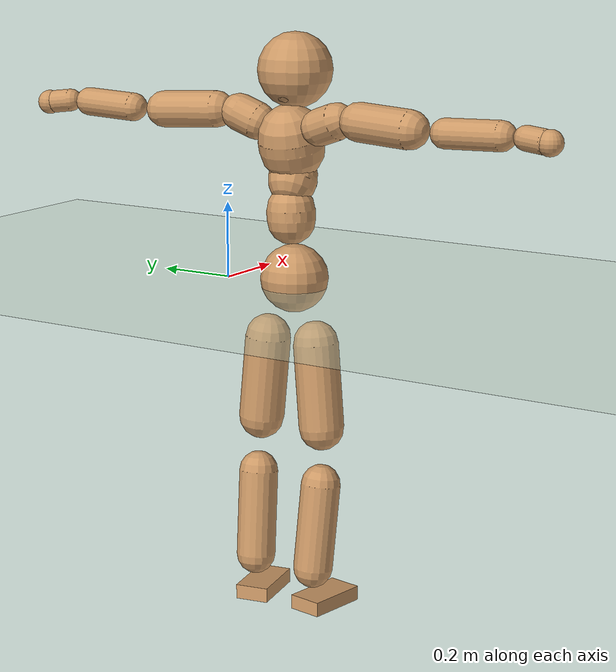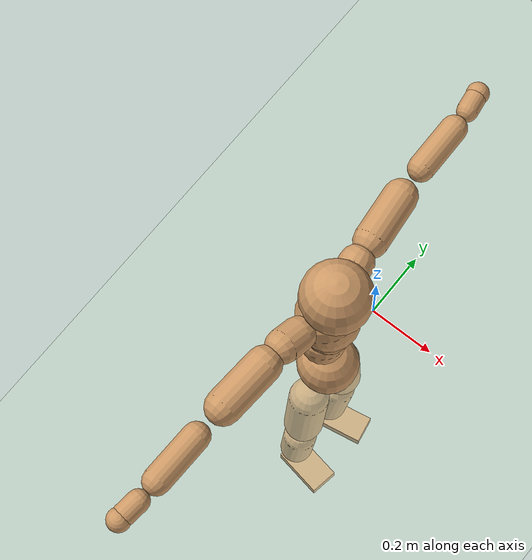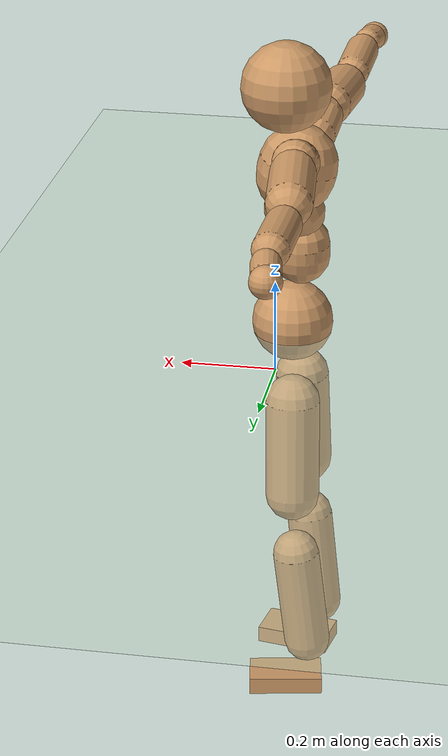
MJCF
<mujoco model="humanoid">
  <compiler coordinate="local"/>
  <default>
    <joint damping="0.0" armature="0.01" stiffness="0.0" limited="true"/>
    <geom conaffinity="1" condim="3" contype="7" margin="0.001" rgba="0.8 0.6 .4 1"/>
  </default>
  <asset>
    <texture type="skybox" builtin="gradient" rgb1=".4 .5 .6" rgb2="0 0 0" width="100" height="100"/>
    <texture builtin="flat" height="1278" mark="cross" markrgb="1 1 1" name="texgeom" random="0.01" rgb1="0.8 0.6 0.4" rgb2="0.8 0.6 0.4" type="cube" width="127"/>
    <texture builtin="checker" height="100" name="texplane" rgb1="0 0 0" rgb2="0.8 0.8 0.8" type="2d" width="100"/>
    <material name="MatPlane" reflectance="0.5" shininess="1" specular="1" texrepeat="60 60" texture="texplane"/>
    <material name="geom" texture="texgeom" texuniform="true"/>
  </asset>
  <worldbody>
    <light cutoff="100" diffuse="1 1 1" dir="-0 0 -1.3" directional="true" exponent="1" pos="0 0 1.3" specular=".1 .1 .1"/>
    <geom conaffinity="1" condim="3" name="floor" pos="0 0 0" rgba="0.8 0.9 0.8 1" size="100 100 .2" type="plane" material="MatPlane"/>
    <body name="Pelvis" pos="-0.0016 -0.2063 0.0217">
      <freejoint name="Pelvis"/>
      <geom type="sphere" contype="1" conaffinity="1" density="500" size="0.0881" pos="0.0000 0.0000 0.0000" name="Pelvis"/>
      <body name="L_Hip" pos="-0.0116 0.0664 -0.0887">
        <joint name="L_Hip_x" type="hinge" pos="0 0 0" axis="1 0 0" stiffness="800" damping="80" armature="0.02" range="-180.0000 180.0000"/>
        <joint name="L_Hip_y" type="hinge" pos="0 0 0" axis="0 1 0" stiffness="800" damping="80" armature="0.02" range="-180.0000 180.0000"/>
        <joint name="L_Hip_z" type="hinge" pos="0 0 0" axis="0 0 1" stiffness="800" damping="80" armature="0.02" range="-180.0000 180.0000"/>
        <geom type="capsule" contype="1" conaffinity="1" density="500" fromto="-0.0009 0.0062 -0.0725 -0.0036 0.0249 -0.2901" size="0.0591" name="L_Hip"/>
        <body name="L_Knee" pos="-0.0045 0.0312 -0.3627">
          <joint name="L_Knee_x" type="hinge" pos="0 0 0" axis="1 0 0" stiffness="800" damping="80" armature="0.02" range="-180.0000 180.0000"/>
          <joint name="L_Knee_y" type="hinge" pos="0 0 0" axis="0 1 0" stiffness="800" damping="80" armature="0.02" range="-180.0000 180.0000"/>
          <joint name="L_Knee_z" type="hinge" pos="0 0 0" axis="0 0 1" stiffness="800" damping="80" armature="0.02" range="-180.0000 180.0000"/>
          <geom type="capsule" contype="1" conaffinity="1" density="500" fromto="-0.0082 -0.0023 -0.0756 -0.0329 -0.0091 -0.3023" size="0.0509" name="L_Knee"/>
          <body name="L_Ankle" pos="-0.0412 -0.0113 -0.3779">
            <joint name="L_Ankle_x" type="hinge" pos="0 0 0" axis="1 0 0" stiffness="800" damping="80" armature="0.02" range="-180.0000 180.0000"/>
            <joint name="L_Ankle_y" type="hinge" pos="0 0 0" axis="0 1 0" stiffness="800" damping="80" armature="0.02" range="-180.0000 180.0000"/>
            <joint name="L_Ankle_z" type="hinge" pos="0 0 0" axis="0 0 1" stiffness="800" damping="80" armature="0.02" range="-180.0000 180.0000"/>
            <geom type="box" contype="1" conaffinity="1" density="500" pos="0.0564 0.0101 -0.0264" size="0.0815 0.0438 0.0192" quat="0.9961 0.0000 0.0000 0.0887" name="L_Ankle"/>
            <body name="L_Toe" pos="0.1128 0.0203 -0.0529">
              <joint name="L_Toe_x" type="hinge" pos="0 0 0" axis="1 0 0" stiffness="500" damping="50" armature="0.02" range="-180.0000 180.0000"/>
              <joint name="L_Toe_y" type="hinge" pos="0 0 0" axis="0 1 0" stiffness="500" damping="50" armature="0.02" range="-180.0000 180.0000"/>
              <joint name="L_Toe_z" type="hinge" pos="0 0 0" axis="0 0 1" stiffness="500" damping="50" armature="0.02" range="-180.0000 180.0000"/>
              <geom type="box" contype="1" conaffinity="1" density="500" pos="0.0000 0.0000 0.0258" size="0.0009 0.0022 0.0009" quat="0.9954 0.0000 0.0000 0.0956" name="L_Toe"/>
            </body>
          </body>
        </body>
      </body>
      <body name="R_Hip" pos="-0.0085 -0.0642 -0.0879">
        <joint name="R_Hip_x" type="hinge" pos="0 0 0" axis="1 0 0" stiffness="800" damping="80" armature="0.02" range="-180.0000 180.0000"/>
        <joint name="R_Hip_y" type="hinge" pos="0 0 0" axis="0 1 0" stiffness="800" damping="80" armature="0.02" range="-180.0000 180.0000"/>
        <joint name="R_Hip_z" type="hinge" pos="0 0 0" axis="0 0 1" stiffness="800" damping="80" armature="0.02" range="-180.0000 180.0000"/>
        <geom type="capsule" contype="1" conaffinity="1" density="500" fromto="-0.0015 -0.0071 -0.0738 -0.0062 -0.0284 -0.2951" size="0.0584" name="R_Hip"/>
        <body name="R_Knee" pos="-0.0077 -0.0356 -0.3689">
          <joint name="R_Knee_x" type="hinge" pos="0 0 0" axis="1 0 0" stiffness="800" damping="80" armature="0.02" range="-180.0000 180.0000"/>
          <joint name="R_Knee_y" type="hinge" pos="0 0 0" axis="0 1 0" stiffness="800" damping="80" armature="0.02" range="-180.0000 180.0000"/>
          <joint name="R_Knee_z" type="hinge" pos="0 0 0" axis="0 0 1" stiffness="800" damping="80" armature="0.02" range="-180.0000 180.0000"/>
          <geom type="capsule" contype="1" conaffinity="1" density="500" fromto="-0.0078 0.0028 -0.0753 -0.0314 0.0113 -0.3012" size="0.0512" name="R_Knee"/>
          <body name="R_Ankle" pos="-0.0392 0.0141 -0.3765">
            <joint name="R_Ankle_x" type="hinge" pos="0 0 0" axis="1 0 0" stiffness="800" damping="80" armature="0.02" range="-180.0000 180.0000"/>
            <joint name="R_Ankle_y" type="hinge" pos="0 0 0" axis="0 1 0" stiffness="800" damping="80" armature="0.02" range="-180.0000 180.0000"/>
            <joint name="R_Ankle_z" type="hinge" pos="0 0 0" axis="0 0 1" stiffness="800" damping="80" armature="0.02" range="-180.0000 180.0000"/>
            <geom type="box" contype="1" conaffinity="1" density="500" pos="0.0578 -0.0099 -0.0222" size="0.082 0.0448 0.0189" quat="0.9964 0.0000 0.0000 -0.0844" name="R_Ankle"/>
            <body name="R_Toe" pos="0.1157 -0.0197 -0.0445">
              <joint name="R_Toe_x" type="hinge" pos="0 0 0" axis="1 0 0" stiffness="500" damping="50" armature="0.02" range="-180.0000 180.0000"/>
              <joint name="R_Toe_y" type="hinge" pos="0 0 0" axis="0 1 0" stiffness="500" damping="50" armature="0.02" range="-180.0000 180.0000"/>
              <joint name="R_Toe_z" type="hinge" pos="0 0 0" axis="0 0 1" stiffness="500" damping="50" armature="0.02" range="-180.0000 180.0000"/>
              <geom type="box" contype="1" conaffinity="1" density="500" pos="0.0000 0.0000 0.0244" size="0.0008 0.0022 0.0011" quat="0.9972 0.0000 0.0000 -0.0747" name="R_Toe"/>
            </body>
          </body>
        </body>
      </body>
      <body name="Torso" pos="-0.0179 -0.0031 0.1017">
        <joint name="Torso_x" type="hinge" pos="0 0 0" axis="1 0 0" stiffness="1000" damping="100" armature="0.02" range="-180.0000 180.0000"/>
        <joint name="Torso_y" type="hinge" pos="0 0 0" axis="0 1 0" stiffness="1000" damping="100" armature="0.02" range="-180.0000 180.0000"/>
        <joint name="Torso_z" type="hinge" pos="0 0 0" axis="0 0 1" stiffness="1000" damping="100" armature="0.02" range="-180.0000 180.0000"/>
        <geom type="capsule" contype="1" conaffinity="1" density="500" fromto="0.0000 0.0024 0.0793 0.0000 0.0016 0.0528" size="0.062589" name="Torso"/>
        <body name="Spine" pos="0.0001 0.004 0.1321">
          <joint name="Spine_x" type="hinge" pos="0 0 0" axis="1 0 0" stiffness="1000" damping="100" armature="0.02" range="-180.0000 180.0000"/>
          <joint name="Spine_y" type="hinge" pos="0 0 0" axis="0 1 0" stiffness="1000" damping="100" armature="0.02" range="-180.0000 180.0000"/>
          <joint name="Spine_z" type="hinge" pos="0 0 0" axis="0 0 1" stiffness="1000" damping="100" armature="0.02" range="-180.0000 180.0000"/>
          <geom type="capsule" contype="1" conaffinity="1" density="500" fromto="0.0167 0.0019 0.0288 0.0111 0.0012 0.0192" size="0.062868" name="Spine"/>
          <body name="Chest" pos="0.0279 0.0031 0.048">
            <joint name="Chest_x" type="hinge" pos="0 0 0" axis="1 0 0" stiffness="1000" damping="100" armature="0.02" range="-180.0000 180.0000"/>
            <joint name="Chest_y" type="hinge" pos="0 0 0" axis="0 1 0" stiffness="1000" damping="100" armature="0.02" range="-180.0000 180.0000"/>
            <joint name="Chest_z" type="hinge" pos="0 0 0" axis="0 0 1" stiffness="1000" damping="100" armature="0.02" range="-180.0000 180.0000"/>
            <geom type="capsule" contype="1" conaffinity="1" density="500" fromto="-0.0232 -0.0003 0.0828 -0.0155 -0.0002 0.0552" size="0.084165" name="Chest"/>
            <body name="Neck" pos="-0.045 -0.0005 0.1928">
              <joint name="Neck_x" type="hinge" pos="0 0 0" axis="1 0 0" stiffness="500" damping="50" armature="0.02" range="-180.0000 180.0000"/>
              <joint name="Neck_y" type="hinge" pos="0 0 0" axis="0 1 0" stiffness="500" damping="50" armature="0.02" range="-180.0000 180.0000"/>
              <joint name="Neck_z" type="hinge" pos="0 0 0" axis="0 0 1" stiffness="500" damping="50" armature="0.02" range="-180.0000 180.0000"/>
              <geom type="capsule" contype="1" conaffinity="1" density="500" fromto="0.0096 0.0007 0.0114 0.0382 0.0026 0.0456" size="0.037014" name="Neck"/>
              <body name="Head" pos="0.0478 0.0033 0.057">
                <joint name="Head_x" type="hinge" pos="0 0 0" axis="1 0 0" stiffness="500" damping="50" armature="0.02" range="-180.0000 180.0000"/>
                <joint name="Head_y" type="hinge" pos="0 0 0" axis="0 1 0" stiffness="500" damping="50" armature="0.02" range="-180.0000 180.0000"/>
                <joint name="Head_z" type="hinge" pos="0 0 0" axis="0 0 1" stiffness="500" damping="50" armature="0.02" range="-180.0000 180.0000"/>
                <geom type="sphere" contype="1" conaffinity="1" density="500" size="0.0961" pos="0.0000 0.0000 0.0000" name="Head"/>
              </body>
            </body>
            <body name="L_Thorax" pos="-0.0329 0.0756 0.1121">
              <joint name="L_Thorax_x" type="hinge" pos="0 0 0" axis="1 0 0" stiffness="500" damping="50" armature="0.02" range="-180.0000 180.0000"/>
              <joint name="L_Thorax_y" type="hinge" pos="0 0 0" axis="0 1 0" stiffness="500" damping="50" armature="0.02" range="-180.0000 180.0000"/>
              <joint name="L_Thorax_z" type="hinge" pos="0 0 0" axis="0 0 1" stiffness="500" damping="50" armature="0.02" range="-180.0000 180.0000"/>
              <geom type="capsule" contype="1" conaffinity="1" density="500" fromto="-0.0015 0.0169 0.0065 -0.0058 0.0677 0.0262" size="0.048" name="L_Thorax"/>
              <body name="L_Shoulder" pos="-0.0073 0.0846 0.0327">
                <joint name="L_Shoulder_x" type="hinge" pos="0 0 0" axis="1 0 0" stiffness="500" damping="50" armature="0.02" range="-720.0000 720.0000"/>
                <joint name="L_Shoulder_y" type="hinge" pos="0 0 0" axis="0 1 0" stiffness="500" damping="50" armature="0.02" range="-720.0000 720.0000"/>
                <joint name="L_Shoulder_z" type="hinge" pos="0 0 0" axis="0 0 1" stiffness="500" damping="50" armature="0.02" range="-720.0000 720.0000"/>
                <geom type="capsule" contype="1" conaffinity="1" density="500" fromto="-0.0058 0.0500 -0.0026 -0.0231 0.2000 -0.0102" size="0.0475" name="L_Shoulder"/>
                <body name="L_Elbow" pos="-0.0289 0.25 -0.0128">
                  <joint name="L_Elbow_x" type="hinge" pos="0 0 0" axis="1 0 0" stiffness="500" damping="50" armature="0.02" range="-720.0000 720.0000"/>
                  <joint name="L_Elbow_y" type="hinge" pos="0 0 0" axis="0 1 0" stiffness="500" damping="50" armature="0.02" range="-720.0000 720.0000"/>
                  <joint name="L_Elbow_z" type="hinge" pos="0 0 0" axis="0 0 1" stiffness="500" damping="50" armature="0.02" range="-720.0000 720.0000"/>
                  <geom type="capsule" contype="1" conaffinity="1" density="500" fromto="-0.0001 0.0475 0.0018 -0.0004 0.1901 0.0074" size="0.0371" name="L_Elbow"/>
                  <body name="L_Wrist" pos="-0.0005 0.2376 0.0092">
                    <joint name="L_Wrist_x" type="hinge" pos="0 0 0" axis="1 0 0" stiffness="300" damping="30" armature="0.02" range="-180.0000 180.0000"/>
                    <joint name="L_Wrist_y" type="hinge" pos="0 0 0" axis="0 1 0" stiffness="300" damping="30" armature="0.02" range="-180.0000 180.0000"/>
                    <joint name="L_Wrist_z" type="hinge" pos="0 0 0" axis="0 0 1" stiffness="300" damping="30" armature="0.02" range="-180.0000 180.0000"/>
                    <geom type="capsule" contype="1" conaffinity="1" density="500" fromto="-0.0026 0.0158 -0.0019 -0.0106 0.0630 -0.0077" size="0.0296" name="L_Wrist"/>
                    <body name="L_Hand" pos="-0.0132 0.0788 -0.0096">
                      <joint name="L_Hand_x" type="hinge" pos="0 0 0" axis="1 0 0" stiffness="300" damping="30" armature="0.02" range="-180.0000 180.0000"/>
                      <joint name="L_Hand_y" type="hinge" pos="0 0 0" axis="0 1 0" stiffness="300" damping="30" armature="0.02" range="-180.0000 180.0000"/>
                      <joint name="L_Hand_z" type="hinge" pos="0 0 0" axis="0 0 1" stiffness="300" damping="30" armature="0.02" range="-180.0000 180.0000"/>
                      <geom type="sphere" contype="1" conaffinity="1" density="500" size="0.0318" pos="0.0000 0.0000 0.0000" name="L_Hand"/>
                    </body>
                  </body>
                </body>
              </body>
            </body>
            <body name="R_Thorax" pos="-0.038 -0.0766 0.109">
              <joint name="R_Thorax_x" type="hinge" pos="0 0 0" axis="1 0 0" stiffness="500" damping="50" armature="0.02" range="-180.0000 180.0000"/>
              <joint name="R_Thorax_y" type="hinge" pos="0 0 0" axis="0 1 0" stiffness="500" damping="50" armature="0.02" range="-180.0000 180.0000"/>
              <joint name="R_Thorax_z" type="hinge" pos="0 0 0" axis="0 0 1" stiffness="500" damping="50" armature="0.02" range="-180.0000 180.0000"/>
              <geom type="capsule" contype="1" conaffinity="1" density="500" fromto="-0.0022 -0.0181 0.0065 -0.0090 -0.0724 0.0260" size="0.0472" name="R_Thorax"/>
              <body name="R_Shoulder" pos="-0.0112 -0.0905 0.0325">
                <joint name="R_Shoulder_x" type="hinge" pos="0 0 0" axis="1 0 0" stiffness="500" damping="50" armature="0.02" range="-720.0000 720.0000"/>
                <joint name="R_Shoulder_y" type="hinge" pos="0 0 0" axis="0 1 0" stiffness="500" damping="50" armature="0.02" range="-720.0000 720.0000"/>
                <joint name="R_Shoulder_z" type="hinge" pos="0 0 0" axis="0 0 1" stiffness="500" damping="50" armature="0.02" range="-720.0000 720.0000"/>
                <geom type="capsule" contype="1" conaffinity="1" density="500" fromto="-0.0038 -0.0490 -0.0025 -0.0151 -0.1959 -0.0099" size="0.049" name="R_Shoulder"/>
                <body name="R_Elbow" pos="-0.0189 -0.2448 -0.0124">
                  <joint name="R_Elbow_x" type="hinge" pos="0 0 0" axis="1 0 0" stiffness="500" damping="50" armature="0.02" range="-720.0000 720.0000"/>
                  <joint name="R_Elbow_y" type="hinge" pos="0 0 0" axis="0 1 0" stiffness="500" damping="50" armature="0.02" range="-720.0000 720.0000"/>
                  <joint name="R_Elbow_z" type="hinge" pos="0 0 0" axis="0 0 1" stiffness="500" damping="50" armature="0.02" range="-720.0000 720.0000"/>
                  <geom type="capsule" contype="1" conaffinity="1" density="500" fromto="-0.0008 -0.0491 0.0016 -0.0033 -0.1963 0.0065" size="0.0374" name="R_Elbow"/>
                  <body name="R_Wrist" pos="-0.0041 -0.2454 0.0082">
                    <joint name="R_Wrist_x" type="hinge" pos="0 0 0" axis="1 0 0" stiffness="300" damping="30" armature="0.02" range="-180.0000 180.0000"/>
                    <joint name="R_Wrist_y" type="hinge" pos="0 0 0" axis="0 1 0" stiffness="300" damping="30" armature="0.02" range="-180.0000 180.0000"/>
                    <joint name="R_Wrist_z" type="hinge" pos="0 0 0" axis="0 0 1" stiffness="300" damping="30" armature="0.02" range="-180.0000 180.0000"/>
                    <geom type="capsule" contype="1" conaffinity="1" density="500" fromto="-0.0021 -0.0159 -0.0014 -0.0083 -0.0638 -0.0057" size="0.0304" name="R_Wrist"/>
                    <body name="R_Hand" pos="-0.0103 -0.0797 -0.0071">
                      <joint name="R_Hand_x" type="hinge" pos="0 0 0" axis="1 0 0" stiffness="300" damping="30" armature="0.02" range="-180.0000 180.0000"/>
                      <joint name="R_Hand_y" type="hinge" pos="0 0 0" axis="0 1 0" stiffness="300" damping="30" armature="0.02" range="-180.0000 180.0000"/>
                      <joint name="R_Hand_z" type="hinge" pos="0 0 0" axis="0 0 1" stiffness="300" damping="30" armature="0.02" range="-180.0000 180.0000"/>
                      <geom type="sphere" contype="1" conaffinity="1" density="500" size="0.0320" pos="0.0000 0.0000 0.0000" name="R_Hand"/>
                    </body>
                  </body>
                </body>
              </body>
            </body>
          </body>
        </body>
      </body>
    </body>
  </worldbody>
  <actuator>
    <motor name="L_Hip_x" joint="L_Hip_x" gear="500"/>
    <motor name="L_Hip_y" joint="L_Hip_y" gear="500"/>
    <motor name="L_Hip_z" joint="L_Hip_z" gear="500"/>
    <motor name="L_Knee_x" joint="L_Knee_x" gear="500"/>
    <motor name="L_Knee_y" joint="L_Knee_y" gear="500"/>
    <motor name="L_Knee_z" joint="L_Knee_z" gear="500"/>
    <motor name="L_Ankle_x" joint="L_Ankle_x" gear="500"/>
    <motor name="L_Ankle_y" joint="L_Ankle_y" gear="500"/>
    <motor name="L_Ankle_z" joint="L_Ankle_z" gear="500"/>
    <motor name="L_Toe_x" joint="L_Toe_x" gear="500"/>
    <motor name="L_Toe_y" joint="L_Toe_y" gear="500"/>
    <motor name="L_Toe_z" joint="L_Toe_z" gear="500"/>
    <motor name="R_Hip_x" joint="R_Hip_x" gear="500"/>
    <motor name="R_Hip_y" joint="R_Hip_y" gear="500"/>
    <motor name="R_Hip_z" joint="R_Hip_z" gear="500"/>
    <motor name="R_Knee_x" joint="R_Knee_x" gear="500"/>
    <motor name="R_Knee_y" joint="R_Knee_y" gear="500"/>
    <motor name="R_Knee_z" joint="R_Knee_z" gear="500"/>
    <motor name="R_Ankle_x" joint="R_Ankle_x" gear="500"/>
    <motor name="R_Ankle_y" joint="R_Ankle_y" gear="500"/>
    <motor name="R_Ankle_z" joint="R_Ankle_z" gear="500"/>
    <motor name="R_Toe_x" joint="R_Toe_x" gear="500"/>
    <motor name="R_Toe_y" joint="R_Toe_y" gear="500"/>
    <motor name="R_Toe_z" joint="R_Toe_z" gear="500"/>
    <motor name="Torso_x" joint="Torso_x" gear="500"/>
    <motor name="Torso_y" joint="Torso_y" gear="500"/>
    <motor name="Torso_z" joint="Torso_z" gear="500"/>
    <motor name="Spine_x" joint="Spine_x" gear="500"/>
    <motor name="Spine_y" joint="Spine_y" gear="500"/>
    <motor name="Spine_z" joint="Spine_z" gear="500"/>
    <motor name="Chest_x" joint="Chest_x" gear="500"/>
    <motor name="Chest_y" joint="Chest_y" gear="500"/>
    <motor name="Chest_z" joint="Chest_z" gear="500"/>
    <motor name="Neck_x" joint="Neck_x" gear="500"/>
    <motor name="Neck_y" joint="Neck_y" gear="500"/>
    <motor name="Neck_z" joint="Neck_z" gear="500"/>
    <motor name="Head_x" joint="Head_x" gear="500"/>
    <motor name="Head_y" joint="Head_y" gear="500"/>
    <motor name="Head_z" joint="Head_z" gear="500"/>
    <motor name="L_Thorax_x" joint="L_Thorax_x" gear="500"/>
    <motor name="L_Thorax_y" joint="L_Thorax_y" gear="500"/>
    <motor name="L_Thorax_z" joint="L_Thorax_z" gear="500"/>
    <motor name="L_Shoulder_x" joint="L_Shoulder_x" gear="500"/>
    <motor name="L_Shoulder_y" joint="L_Shoulder_y" gear="500"/>
    <motor name="L_Shoulder_z" joint="L_Shoulder_z" gear="500"/>
    <motor name="L_Elbow_x" joint="L_Elbow_x" gear="500"/>
    <motor name="L_Elbow_y" joint="L_Elbow_y" gear="500"/>
    <motor name="L_Elbow_z" joint="L_Elbow_z" gear="500"/>
    <motor name="L_Wrist_x" joint="L_Wrist_x" gear="500"/>
    <motor name="L_Wrist_y" joint="L_Wrist_y" gear="500"/>
    <motor name="L_Wrist_z" joint="L_Wrist_z" gear="500"/>
    <motor name="L_Hand_x" joint="L_Hand_x" gear="500"/>
    <motor name="L_Hand_y" joint="L_Hand_y" gear="500"/>
    <motor name="L_Hand_z" joint="L_Hand_z" gear="500"/>
    <motor name="R_Thorax_x" joint="R_Thorax_x" gear="500"/>
    <motor name="R_Thorax_y" joint="R_Thorax_y" gear="500"/>
    <motor name="R_Thorax_z" joint="R_Thorax_z" gear="500"/>
    <motor name="R_Shoulder_x" joint="R_Shoulder_x" gear="500"/>
    <motor name="R_Shoulder_y" joint="R_Shoulder_y" gear="500"/>
    <motor name="R_Shoulder_z" joint="R_Shoulder_z" gear="500"/>
    <motor name="R_Elbow_x" joint="R_Elbow_x" gear="500"/>
    <motor name="R_Elbow_y" joint="R_Elbow_y" gear="500"/>
    <motor name="R_Elbow_z" joint="R_Elbow_z" gear="500"/>
    <motor name="R_Wrist_x" joint="R_Wrist_x" gear="500"/>
    <motor name="R_Wrist_y" joint="R_Wrist_y" gear="500"/>
    <motor name="R_Wrist_z" joint="R_Wrist_z" gear="500"/>
    <motor name="R_Hand_x" joint="R_Hand_x" gear="500"/>
    <motor name="R_Hand_y" joint="R_Hand_y" gear="500"/>
    <motor name="R_Hand_z" joint="R_Hand_z" gear="500"/>
  </actuator>
  <contact>
    <exclude body1="Torso" body2="Chest"/>
    <exclude body1="Head" body2="Chest"/>
    <exclude body1="R_Knee" body2="R_Toe"/>
    <exclude body1="R_Knee" body2="L_Ankle"/>
    <exclude body1="R_Knee" body2="L_Toe"/>
    <exclude body1="L_Knee" body2="L_Toe"/>
    <exclude body1="L_Knee" body2="R_Ankle"/>
    <exclude body1="L_Knee" body2="R_Toe"/>
    <exclude body1="L_Shoulder" body2="Chest"/>
    <exclude body1="R_Shoulder" body2="Chest"/>
  </contact>
  <sensor/>
  <size njmax="700" nconmax="700"/>
</mujoco>
